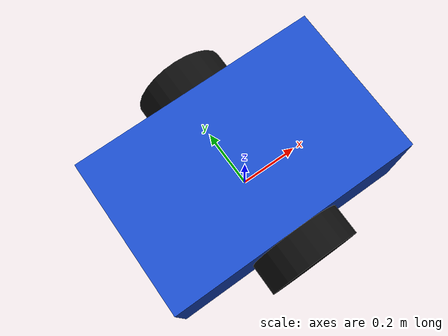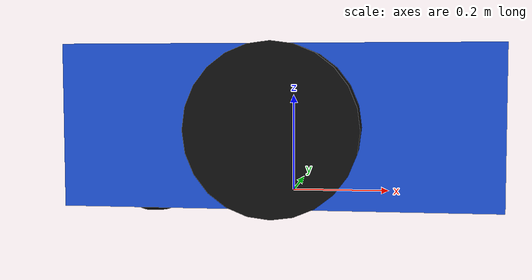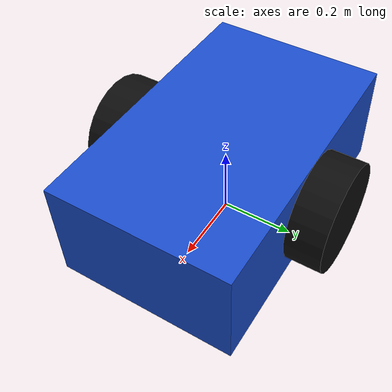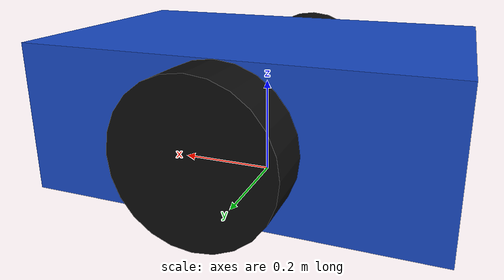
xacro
<?xml version="1.0"?>

<robot name="basic_robot" xmlns:xacro="http://www.ros.org/wiki/xacro">

  <!-- Materials -->

  <material name="blue">
    <color rgba="0.1 0.3 0.8 1.0"/>
  </material>

  <material name="black">
    <color rgba="0.05 0.05 0.05 1.0"/>
  </material>

  <!-- Base -->

  <link name="base_link">

    <visual>
      <origin xyz="0 0 0.15"/>
      <geometry>
        <box size="0.8 0.5 0.3"/>
      </geometry>
      <material name="blue"/>
    </visual>

    <collision>
      <origin xyz="0 0 0.15"/>
      <geometry>
        <box size="0.8 0.5 0.3"/>
      </geometry>
    </collision>

    <inertial>
      <origin xyz="0 0 0.15"/>
      <mass value="5.0"/>
      <inertia
        ixx="0.13"
        ixy="0"
        ixz="0"
        iyy="0.33"
        iyz="0"
        izz="0.42"/>
    </inertial>

  </link>

  <!-- Left wheel -->

  <link name="left_wheel">

    <visual>
      <origin rpy="1.5708 0 0"/>
      <geometry>
        <cylinder radius="0.15" length="0.1"/>
      </geometry>
      <material name="black"/>
    </visual>

    <collision>
      <origin rpy="1.5708 0 0"/>
      <geometry>
        <cylinder radius="0.15" length="0.1"/>
      </geometry>
    </collision>

    <inertial>
      <mass value="0.5"/>
      <inertia
        ixx="0.005"
        ixy="0"
        ixz="0"
        iyy="0.005"
        iyz="0"
        izz="0.005"/>
    </inertial>

  </link>

  <joint name="left_wheel_joint"
         type="continuous">

    <parent link="base_link"/>
    <child link="left_wheel"/>

    <origin xyz="0 0.3 0.15"/>
    <axis xyz="0 1 0"/>

  </joint>

  <!-- Right wheel -->

  <link name="right_wheel">

    <visual>
      <origin rpy="1.5708 0 0"/>
      <geometry>
        <cylinder radius="0.15" length="0.1"/>
      </geometry>
      <material name="black"/>
    </visual>

    <collision>
      <origin rpy="1.5708 0 0"/>
      <geometry>
        <cylinder radius="0.15" length="0.1"/>
      </geometry>
    </collision>

    <inertial>
      <mass value="0.5"/>
      <inertia
        ixx="0.005"
        ixy="0"
        ixz="0"
        iyy="0.005"
        iyz="0"
        izz="0.005"/>
    </inertial>

  </link>

  <joint name="right_wheel_joint"
         type="continuous">

    <parent link="base_link"/>
    <child link="right_wheel"/>

    <origin xyz="0 -0.3 0.15"/>
    <axis xyz="0 1 0"/>

  </joint>

  <!-- Caster -->

  <link name="caster">

    <visual>
      <geometry>
        <sphere radius="0.1"/>
      </geometry>
      <material name="black"/>
    </visual>

    <collision>
      <geometry>
        <sphere radius="0.1"/>
      </geometry>
    </collision>

    <inertial>
      <mass value="0.2"/>
      <inertia
        ixx="0.001"
        ixy="0"
        ixz="0"
        iyy="0.001"
        iyz="0"
        izz="0.001"/>
    </inertial>

  </link>

  <joint name="caster_joint"
         type="fixed">

    <parent link="base_link"/>
    <child link="caster"/>

    <origin xyz="-0.3 0 0.05"/>

  </joint>

  <!-- Gazebo -->

  <gazebo reference="base_link">

    <material>Gazebo/Blue</material>

  </gazebo>

  <gazebo reference="left_wheel">

    <material>Gazebo/Black</material>

  </gazebo>

  <gazebo reference="right_wheel">

    <material>Gazebo/Black</material>

  </gazebo>

  <gazebo reference="caster">

    <material>Gazebo/Black</material>

  </gazebo>

  <!-- Differential drive -->

  <gazebo>

    <plugin
      name="diff_drive"
      filename="libgazebo_ros_diff_drive.so">

      <ros>
        <namespace>/</namespace>
      </ros>

      <update_rate>50</update_rate>

      <left_joint>left_wheel_joint</left_joint>
      <right_joint>right_wheel_joint</right_joint>

      <wheel_separation>0.6</wheel_separation>
      <wheel_diameter>0.3</wheel_diameter>

      <command_topic>cmd_vel</command_topic>

      <odometry_topic>odom</odometry_topic>
      <odometry_frame>odom</odometry_frame>
      <robot_base_frame>base_link</robot_base_frame>

      <publish_odom>true</publish_odom>
      <publish_odom_tf>true</publish_odom_tf>

    </plugin>

  </gazebo>

</robot>
